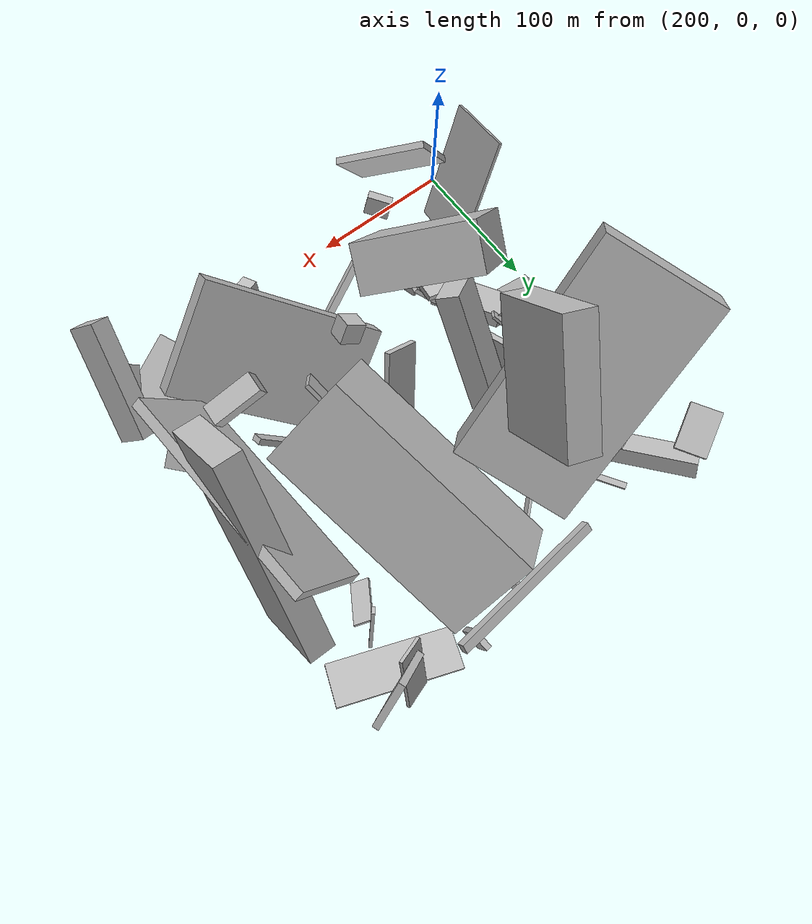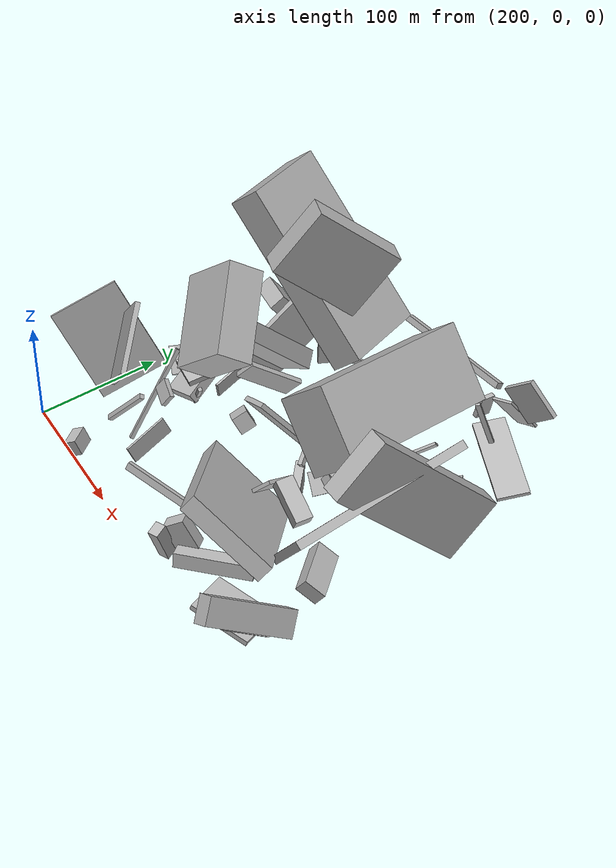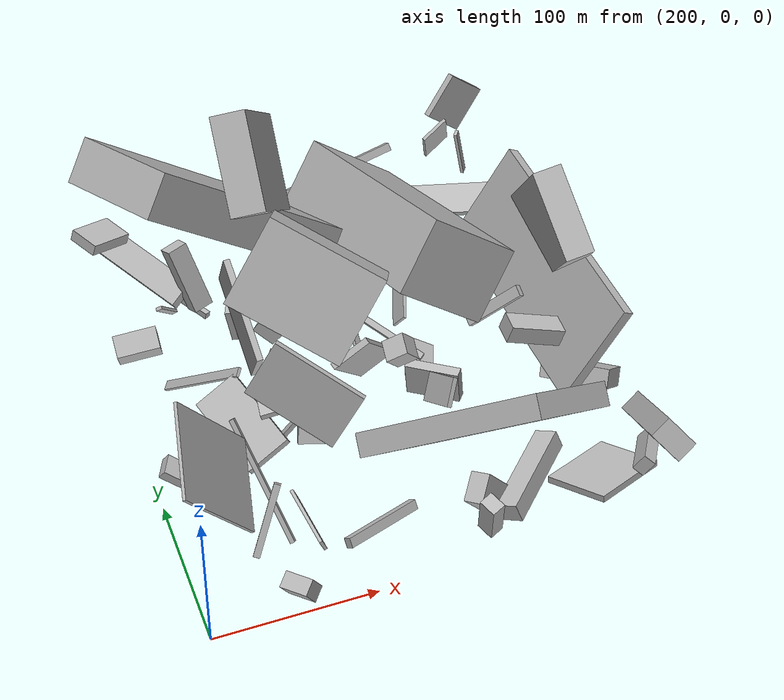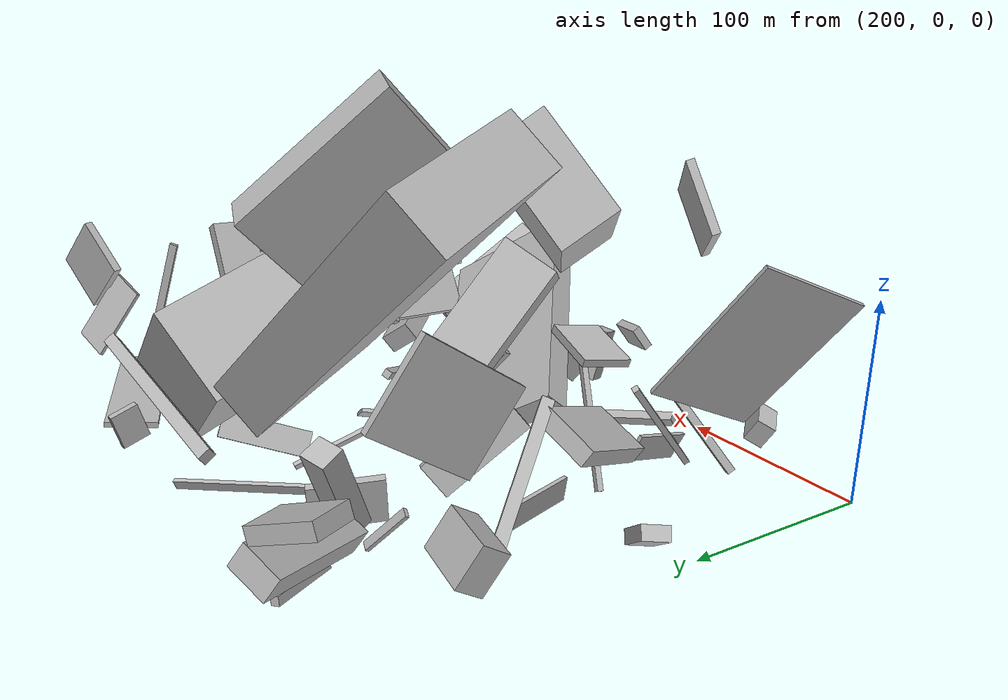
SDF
<sdf version="1.6">
 <world name="default">
  <model name="building_3">
   <static>0</static>
   <pose>450.8930975170687 287.48173431054585 97.3096310186768 1.507844690463147 -0.8073381484602125 0.4057914663743679</pose>
   <link name="link">
    <gravity>0</gravity>
    <pose>0 0 2.0 0 0 0</pose>
    <collision name="collision"><geometry><box><size>30 33 4</size></box></geometry></collision>
    <visual name="visual">
     <cast_shadows>0</cast_shadows>
     <geometry><box><size>30 33 4</size></box></geometry>
     <material>
      <script>
       <uri>model://HANNAS_wall/materials/scripts</uri>
       <uri>model://HANNAS_wall/materials/textures</uri>
       <name>vrc/HANNAS_wall</name>
      </script>
     </material>
    </visual>
   </link>
  </model>
  <model name="building_4">
   <static>0</static>
   <pose>367.2085070339192 194.0304723521374 62.208197208277205 0.36969522379419045 -0.6738252039779774 3.1195512328538704</pose>
   <link name="link">
    <gravity>0</gravity>
    <pose>0 0 24.0 0 0 0</pose>
    <collision name="collision"><geometry><box><size>64 147 48</size></box></geometry></collision>
    <visual name="visual">
     <cast_shadows>0</cast_shadows>
     <geometry><box><size>64 147 48</size></box></geometry>
     <material>
      <script>
       <uri>model://HANNAS_wall/materials/scripts</uri>
       <uri>model://HANNAS_wall/materials/textures</uri>
       <name>vrc/HANNAS_wall</name>
      </script>
     </material>
    </visual>
   </link>
  </model>
  <model name="building_8">
   <static>0</static>
   <pose>358.8000319206011 53.29572700275003 62.51961602610329 2.33568567704145 -0.6957634132902295 1.4990765797685028</pose>
   <link name="link">
    <gravity>0</gravity>
    <pose>0 0 39.0 0 0 0</pose>
    <collision name="collision"><geometry><box><size>15 128 78</size></box></geometry></collision>
    <visual name="visual">
     <cast_shadows>0</cast_shadows>
     <geometry><box><size>15 128 78</size></box></geometry>
     <material>
      <script>
       <uri>model://HANNAS_wall/materials/scripts</uri>
       <uri>model://HANNAS_wall/materials/textures</uri>
       <name>vrc/HANNAS_wall</name>
      </script>
     </material>
    </visual>
   </link>
  </model>
  <model name="building_28">
   <static>0</static>
   <pose>328.0388374397415 139.2967949768567 34.741643637846025 -0.6937214261656218 -0.8466862311553371 -2.2370734669124728</pose>
   <link name="link">
    <gravity>0</gravity>
    <pose>0 0 13.0 0 0 0</pose>
    <collision name="collision"><geometry><box><size>72 4 26</size></box></geometry></collision>
    <visual name="visual">
     <cast_shadows>0</cast_shadows>
     <geometry><box><size>72 4 26</size></box></geometry>
     <material>
      <script>
       <uri>model://HANNAS_wall/materials/scripts</uri>
       <uri>model://HANNAS_wall/materials/textures</uri>
       <name>vrc/HANNAS_wall</name>
      </script>
     </material>
    </visual>
   </link>
  </model>
  <model name="building_38">
   <static>0</static>
   <pose>464.1576836696233 96.77750329843218 36.46694940271851 -2.514524869911133 0.19679357910353318 2.3549243766485066</pose>
   <link name="link">
    <gravity>0</gravity>
    <pose>0 0 6.0 0 0 0</pose>
    <collision name="collision"><geometry><box><size>44 19 12</size></box></geometry></collision>
    <visual name="visual">
     <cast_shadows>0</cast_shadows>
     <geometry><box><size>44 19 12</size></box></geometry>
     <material>
      <script>
       <uri>model://HANNAS_wall/materials/scripts</uri>
       <uri>model://HANNAS_wall/materials/textures</uri>
       <name>vrc/HANNAS_wall</name>
      </script>
     </material>
    </visual>
   </link>
  </model>
  <model name="building_39">
   <static>0</static>
   <pose>261.3214544324071 209.63113531645956 111.17041259311725 0.32634068536976996 -0.7096972280868387 -2.9269833830023058</pose>
   <link name="link">
    <gravity>0</gravity>
    <pose>0 0 14.0 0 0 0</pose>
    <collision name="collision"><geometry><box><size>150 76 28</size></box></geometry></collision>
    <visual name="visual">
     <cast_shadows>0</cast_shadows>
     <geometry><box><size>150 76 28</size></box></geometry>
     <material>
      <script>
       <uri>model://HANNAS_wall/materials/scripts</uri>
       <uri>model://HANNAS_wall/materials/textures</uri>
       <name>vrc/HANNAS_wall</name>
      </script>
     </material>
    </visual>
   </link>
  </model>
  <model name="building_40">
   <static>0</static>
   <pose>276.9879266689189 100.03314976470202 71.57198929916207 -0.14353702798734272 0.2353346117044769 2.974491918062972</pose>
   <link name="link">
    <gravity>0</gravity>
    <pose>0 0 2.0 0 0 0</pose>
    <collision name="collision"><geometry><box><size>31 25 4</size></box></geometry></collision>
    <visual name="visual">
     <cast_shadows>0</cast_shadows>
     <geometry><box><size>31 25 4</size></box></geometry>
     <material>
      <script>
       <uri>model://HANNAS_wall/materials/scripts</uri>
       <uri>model://HANNAS_wall/materials/textures</uri>
       <name>vrc/HANNAS_wall</name>
      </script>
     </material>
    </visual>
   </link>
  </model>
  <model name="building_47">
   <static>0</static>
   <pose>408.88793407285306 36.912778225462894 12.166605865511102 0.40511841900523166 0.03553645866096697 -2.351190383416803</pose>
   <link name="link">
    <gravity>0</gravity>
    <pose>0 0 6.0 0 0 0</pose>
    <collision name="collision"><geometry><box><size>62 14 12</size></box></geometry></collision>
    <visual name="visual">
     <cast_shadows>0</cast_shadows>
     <geometry><box><size>62 14 12</size></box></geometry>
     <material>
      <script>
       <uri>model://HANNAS_wall/materials/scripts</uri>
       <uri>model://HANNAS_wall/materials/textures</uri>
       <name>vrc/HANNAS_wall</name>
      </script>
     </material>
    </visual>
   </link>
  </model>
  <model name="building_49">
   <static>0</static>
   <pose>475.37248958033126 172.39972605572916 77.97186868393027 1.8031140768209986 -0.8954587846537511 -1.7441668914271056</pose>
   <link name="link">
    <gravity>0</gravity>
    <pose>0 0 9.0 0 0 0</pose>
    <collision name="collision"><geometry><box><size>150 55 18</size></box></geometry></collision>
    <visual name="visual">
     <cast_shadows>0</cast_shadows>
     <geometry><box><size>150 55 18</size></box></geometry>
     <material>
      <script>
       <uri>model://HANNAS_wall/materials/scripts</uri>
       <uri>model://HANNAS_wall/materials/textures</uri>
       <name>vrc/HANNAS_wall</name>
      </script>
     </material>
    </visual>
   </link>
  </model>
  <model name="building_53">
   <static>0</static>
   <pose>258.8851005368619 255.14816545746297 5.8913647735968375 -0.0833760310381549 -0.1833674534385705 -2.574256198408164</pose>
   <link name="link">
    <gravity>0</gravity>
    <pose>0 0 2.0 0 0 0</pose>
    <collision name="collision"><geometry><box><size>4 35 4</size></box></geometry></collision>
    <visual name="visual">
     <cast_shadows>0</cast_shadows>
     <geometry><box><size>4 35 4</size></box></geometry>
     <material>
      <script>
       <uri>model://HANNAS_wall/materials/scripts</uri>
       <uri>model://HANNAS_wall/materials/textures</uri>
       <name>vrc/HANNAS_wall</name>
      </script>
     </material>
    </visual>
   </link>
  </model>
  <model name="building_54">
   <static>0</static>
   <pose>301.1909848867696 276.90171834122816 49.67268386523696 1.2774698055277653 -0.8966509977664123 1.9105918987117505</pose>
   <link name="link">
    <gravity>0</gravity>
    <pose>0 0 55.0 0 0 0</pose>
    <collision name="collision"><geometry><box><size>5 6 110</size></box></geometry></collision>
    <visual name="visual">
     <cast_shadows>0</cast_shadows>
     <geometry><box><size>5 6 110</size></box></geometry>
     <material>
      <script>
       <uri>model://HANNAS_wall/materials/scripts</uri>
       <uri>model://HANNAS_wall/materials/textures</uri>
       <name>vrc/HANNAS_wall</name>
      </script>
     </material>
    </visual>
   </link>
  </model>
  <model name="building_56">
   <static>0</static>
   <pose>436.6278102044429 143.02133008682407 44.38992195954907 0.05047440645811316 0.5225560769447397 0.10101155572866681</pose>
   <link name="link">
    <gravity>0</gravity>
    <pose>0 0 34.5 0 0 0</pose>
    <collision name="collision"><geometry><box><size>7 150 69</size></box></geometry></collision>
    <visual name="visual">
     <cast_shadows>0</cast_shadows>
     <geometry><box><size>7 150 69</size></box></geometry>
     <material>
      <script>
       <uri>model://HANNAS_wall/materials/scripts</uri>
       <uri>model://HANNAS_wall/materials/textures</uri>
       <name>vrc/HANNAS_wall</name>
      </script>
     </material>
    </visual>
   </link>
  </model>
  <model name="building_64">
   <static>0</static>
   <pose>291.31574658539336 25.065726243638725 121.19814643016917 1.1330629368008416 -0.34368389259049364 -2.1493027934552233</pose>
   <link name="link">
    <gravity>0</gravity>
    <pose>0 0 28.0 0 0 0</pose>
    <collision name="collision"><geometry><box><size>4 36 56</size></box></geometry></collision>
    <visual name="visual">
     <cast_shadows>0</cast_shadows>
     <geometry><box><size>4 36 56</size></box></geometry>
     <material>
      <script>
       <uri>model://HANNAS_wall/materials/scripts</uri>
       <uri>model://HANNAS_wall/materials/textures</uri>
       <name>vrc/HANNAS_wall</name>
      </script>
     </material>
    </visual>
   </link>
  </model>
  <model name="building_67">
   <static>0</static>
   <pose>393.72226839137124 284.9689047127434 21.543334299539172 -0.014562043839147169 0.2954220545655867 1.6961315396017593</pose>
   <link name="link">
    <gravity>0</gravity>
    <pose>0 0 9.0 0 0 0</pose>
    <collision name="collision"><geometry><box><size>14 4 18</size></box></geometry></collision>
    <visual name="visual">
     <cast_shadows>0</cast_shadows>
     <geometry><box><size>14 4 18</size></box></geometry>
     <material>
      <script>
       <uri>model://HANNAS_wall/materials/scripts</uri>
       <uri>model://HANNAS_wall/materials/textures</uri>
       <name>vrc/HANNAS_wall</name>
      </script>
     </material>
    </visual>
   </link>
  </model>
  <model name="building_68">
   <static>0</static>
   <pose>459.5550186898059 10.872238687148558 22.125016118834434 -2.658548285582167 -1.2071760480615166 1.5649358834857627</pose>
   <link name="link">
    <gravity>0</gravity>
    <pose>0 0 21.0 0 0 0</pose>
    <collision name="collision"><geometry><box><size>4 50 42</size></box></geometry></collision>
    <visual name="visual">
     <cast_shadows>0</cast_shadows>
     <geometry><box><size>4 50 42</size></box></geometry>
     <material>
      <script>
       <uri>model://HANNAS_wall/materials/scripts</uri>
       <uri>model://HANNAS_wall/materials/textures</uri>
       <name>vrc/HANNAS_wall</name>
      </script>
     </material>
    </visual>
   </link>
  </model>
  <model name="building_70">
   <static>0</static>
   <pose>288.0774944363029 239.85632933779627 22.23082853786638 1.5066098114086959 -0.18015459790749647 -0.36082647811385526</pose>
   <link name="link">
    <gravity>0</gravity>
    <pose>0 0 17.0 0 0 0</pose>
    <collision name="collision"><geometry><box><size>4 22 34</size></box></geometry></collision>
    <visual name="visual">
     <cast_shadows>0</cast_shadows>
     <geometry><box><size>4 22 34</size></box></geometry>
     <material>
      <script>
       <uri>model://HANNAS_wall/materials/scripts</uri>
       <uri>model://HANNAS_wall/materials/textures</uri>
       <name>vrc/HANNAS_wall</name>
      </script>
     </material>
    </visual>
   </link>
  </model>
  <model name="building_73">
   <static>0</static>
   <pose>484.0562595329216 39.369407734342815 23.395838117945562 1.0856962658154055 -0.9311411904721506 -0.14004896890859905</pose>
   <link name="link">
    <gravity>0</gravity>
    <pose>0 0 17.5 0 0 0</pose>
    <collision name="collision"><geometry><box><size>11 8 35</size></box></geometry></collision>
    <visual name="visual">
     <cast_shadows>0</cast_shadows>
     <geometry><box><size>11 8 35</size></box></geometry>
     <material>
      <script>
       <uri>model://HANNAS_wall/materials/scripts</uri>
       <uri>model://HANNAS_wall/materials/textures</uri>
       <name>vrc/HANNAS_wall</name>
      </script>
     </material>
    </visual>
   </link>
  </model>
  <model name="building_74">
   <static>0</static>
   <pose>275.9781082489166 193.02633966864144 39.17748305069685 0.5881225058562685 -0.07759325036453091 0.004578620516862729</pose>
   <link name="link">
    <gravity>0</gravity>
    <pose>0 0 24.5 0 0 0</pose>
    <collision name="collision"><geometry><box><size>4 64 49</size></box></geometry></collision>
    <visual name="visual">
     <cast_shadows>0</cast_shadows>
     <geometry><box><size>4 64 49</size></box></geometry>
     <material>
      <script>
       <uri>model://HANNAS_wall/materials/scripts</uri>
       <uri>model://HANNAS_wall/materials/textures</uri>
       <name>vrc/HANNAS_wall</name>
      </script>
     </material>
    </visual>
   </link>
  </model>
  <model name="building_79">
   <static>0</static>
   <pose>283.8148423378803 68.55182333729498 69.92878491159374 0.18339374641852282 -0.9544849470770315 1.1864484780937679</pose>
   <link name="link">
    <gravity>0</gravity>
    <pose>0 0 2.0 0 0 0</pose>
    <collision name="collision"><geometry><box><size>12 17 4</size></box></geometry></collision>
    <visual name="visual">
     <cast_shadows>0</cast_shadows>
     <geometry><box><size>12 17 4</size></box></geometry>
     <material>
      <script>
       <uri>model://HANNAS_wall/materials/scripts</uri>
       <uri>model://HANNAS_wall/materials/textures</uri>
       <name>vrc/HANNAS_wall</name>
      </script>
     </material>
    </visual>
   </link>
  </model>
  <model name="building_80">
   <static>0</static>
   <pose>223.79151889229533 281.3874028437046 58.41293277795711 1.2385245863114624 0.07652452511252121 -1.0610082676688133</pose>
   <link name="link">
    <gravity>0</gravity>
    <pose>0 0 15.0 0 0 0</pose>
    <collision name="collision"><geometry><box><size>20 7 30</size></box></geometry></collision>
    <visual name="visual">
     <cast_shadows>0</cast_shadows>
     <geometry><box><size>20 7 30</size></box></geometry>
     <material>
      <script>
       <uri>model://HANNAS_wall/materials/scripts</uri>
       <uri>model://HANNAS_wall/materials/textures</uri>
       <name>vrc/HANNAS_wall</name>
      </script>
     </material>
    </visual>
   </link>
  </model>
  <model name="building_84">
   <static>0</static>
   <pose>300.6324857603844 121.65148395161677 133.37333653230834 0.5850818148740765 -0.8231632846714059 0.45023342880751843</pose>
   <link name="link">
    <gravity>0</gravity>
    <pose>0 0 15.0 0 0 0</pose>
    <collision name="collision"><geometry><box><size>55 73 30</size></box></geometry></collision>
    <visual name="visual">
     <cast_shadows>0</cast_shadows>
     <geometry><box><size>55 73 30</size></box></geometry>
     <material>
      <script>
       <uri>model://HANNAS_wall/materials/scripts</uri>
       <uri>model://HANNAS_wall/materials/textures</uri>
       <name>vrc/HANNAS_wall</name>
      </script>
     </material>
    </visual>
   </link>
  </model>
  <model name="building_91">
   <static>0</static>
   <pose>283.1106934711132 158.74969659400188 32.70215819552576 1.8026377217466651 -0.8660245849622924 0.939646807227113</pose>
   <link name="link">
    <gravity>0</gravity>
    <pose>0 0 2.0 0 0 0</pose>
    <collision name="collision"><geometry><box><size>19 50 4</size></box></geometry></collision>
    <visual name="visual">
     <cast_shadows>0</cast_shadows>
     <geometry><box><size>19 50 4</size></box></geometry>
     <material>
      <script>
       <uri>model://HANNAS_wall/materials/scripts</uri>
       <uri>model://HANNAS_wall/materials/textures</uri>
       <name>vrc/HANNAS_wall</name>
      </script>
     </material>
    </visual>
   </link>
  </model>
  <model name="building_93">
   <static>0</static>
   <pose>459.22396954145813 187.0985094034872 57.41319609349473 -0.15174600289991633 0.010385405322907418 -2.0616462230685024</pose>
   <link name="link">
    <gravity>0</gravity>
    <pose>0 0 10.0 0 0 0</pose>
    <collision name="collision"><geometry><box><size>18 5 20</size></box></geometry></collision>
    <visual name="visual">
     <cast_shadows>0</cast_shadows>
     <geometry><box><size>18 5 20</size></box></geometry>
     <material>
      <script>
       <uri>model://HANNAS_wall/materials/scripts</uri>
       <uri>model://HANNAS_wall/materials/textures</uri>
       <name>vrc/HANNAS_wall</name>
      </script>
     </material>
    </visual>
   </link>
  </model>
  <model name="building_97">
   <static>0</static>
   <pose>249.76196855340194 51.014916220795115 26.30629766962182 0.3786679645907745 -0.9056060284706312 0.7657431930653747</pose>
   <link name="link">
    <gravity>0</gravity>
    <pose>0 0 2.0 0 0 0</pose>
    <collision name="collision"><geometry><box><size>45 4 4</size></box></geometry></collision>
    <visual name="visual">
     <cast_shadows>0</cast_shadows>
     <geometry><box><size>45 4 4</size></box></geometry>
     <material>
      <script>
       <uri>model://HANNAS_wall/materials/scripts</uri>
       <uri>model://HANNAS_wall/materials/textures</uri>
       <name>vrc/HANNAS_wall</name>
      </script>
     </material>
    </visual>
   </link>
  </model>
  <model name="building_99">
   <static>0</static>
   <pose>242.41295129684426 111.65140966074142 33.47399488737736 1.093014008957434 -0.3281525409322316 1.9410191777331234</pose>
   <link name="link">
    <gravity>0</gravity>
    <pose>0 0 14.5 0 0 0</pose>
    <collision name="collision"><geometry><box><size>52 9 29</size></box></geometry></collision>
    <visual name="visual">
     <cast_shadows>0</cast_shadows>
     <geometry><box><size>52 9 29</size></box></geometry>
     <material>
      <script>
       <uri>model://HANNAS_wall/materials/scripts</uri>
       <uri>model://HANNAS_wall/materials/textures</uri>
       <name>vrc/HANNAS_wall</name>
      </script>
     </material>
    </visual>
   </link>
  </model>
  <model name="building_104">
   <static>0</static>
   <pose>222.92474773822056 52.15481723533658 80.19268624215246 2.404754666407856 -0.9674273935689842 -2.708637456373937</pose>
   <link name="link">
    <gravity>0</gravity>
    <pose>0 0 1.0 0 0 0</pose>
    <collision name="collision"><geometry><box><size>80 56 2</size></box></geometry></collision>
    <visual name="visual">
     <cast_shadows>0</cast_shadows>
     <geometry><box><size>80 56 2</size></box></geometry>
     <material>
      <script>
       <uri>model://HANNAS_wall/materials/scripts</uri>
       <uri>model://HANNAS_wall/materials/textures</uri>
       <name>vrc/HANNAS_wall</name>
      </script>
     </material>
    </visual>
   </link>
  </model>
  <model name="building_106">
   <static>0</static>
   <pose>258.44337727753305 234.97865091428815 47.682339461473205 2.0106517495027028 0.11732422232820003 -2.824768102963615</pose>
   <link name="link">
    <gravity>0</gravity>
    <pose>0 0 5.5 0 0 0</pose>
    <collision name="collision"><geometry><box><size>13 44 11</size></box></geometry></collision>
    <visual name="visual">
     <cast_shadows>0</cast_shadows>
     <geometry><box><size>13 44 11</size></box></geometry>
     <material>
      <script>
       <uri>model://HANNAS_wall/materials/scripts</uri>
       <uri>model://HANNAS_wall/materials/textures</uri>
       <name>vrc/HANNAS_wall</name>
      </script>
     </material>
    </visual>
   </link>
  </model>
  <model name="building_113">
   <static>0</static>
   <pose>254.69496284259108 73.63813920518163 33.63464485884361 0.9111432128707472 -0.47335736250879307 -0.21112918332748257</pose>
   <link name="link">
    <gravity>0</gravity>
    <pose>0 0 1.5 0 0 0</pose>
    <collision name="collision"><geometry><box><size>3 80 3</size></box></geometry></collision>
    <visual name="visual">
     <cast_shadows>0</cast_shadows>
     <geometry><box><size>3 80 3</size></box></geometry>
     <material>
      <script>
       <uri>model://HANNAS_wall/materials/scripts</uri>
       <uri>model://HANNAS_wall/materials/textures</uri>
       <name>vrc/HANNAS_wall</name>
      </script>
     </material>
    </visual>
   </link>
  </model>
  <model name="building_114">
   <static>0</static>
   <pose>375.1533871322948 106.35259376933845 34.521622264931494 2.2726432447225955 -0.7658150954428806 0.9358996347001246</pose>
   <link name="link">
    <gravity>0</gravity>
    <pose>0 0 1.5 0 0 0</pose>
    <collision name="collision"><geometry><box><size>18 29 3</size></box></geometry></collision>
    <visual name="visual">
     <cast_shadows>0</cast_shadows>
     <geometry><box><size>18 29 3</size></box></geometry>
     <material>
      <script>
       <uri>model://HANNAS_wall/materials/scripts</uri>
       <uri>model://HANNAS_wall/materials/textures</uri>
       <name>vrc/HANNAS_wall</name>
      </script>
     </material>
    </visual>
   </link>
  </model>
  <model name="building_116">
   <static>0</static>
   <pose>447.8626951499162 255.41397846405062 64.93696113266303 0.03819898910772765 0.303998765635343 -2.2545773378375658</pose>
   <link name="link">
    <gravity>0</gravity>
    <pose>0 0 21.5 0 0 0</pose>
    <collision name="collision"><geometry><box><size>4 2 43</size></box></geometry></collision>
    <visual name="visual">
     <cast_shadows>0</cast_shadows>
     <geometry><box><size>4 2 43</size></box></geometry>
     <material>
      <script>
       <uri>model://HANNAS_wall/materials/scripts</uri>
       <uri>model://HANNAS_wall/materials/textures</uri>
       <name>vrc/HANNAS_wall</name>
      </script>
     </material>
    </visual>
   </link>
  </model>
  <model name="building_121">
   <static>0</static>
   <pose>254.32736157186565 143.0871632550501 13.364068835165138 1.442851774148836 -0.014307371605179553 1.8710418041662968</pose>
   <link name="link">
    <gravity>0</gravity>
    <pose>0 0 1.0 0 0 0</pose>
    <collision name="collision"><geometry><box><size>40 12 2</size></box></geometry></collision>
    <visual name="visual">
     <cast_shadows>0</cast_shadows>
     <geometry><box><size>40 12 2</size></box></geometry>
     <material>
      <script>
       <uri>model://HANNAS_wall/materials/scripts</uri>
       <uri>model://HANNAS_wall/materials/textures</uri>
       <name>vrc/HANNAS_wall</name>
      </script>
     </material>
    </visual>
   </link>
  </model>
  <model name="building_123">
   <static>0</static>
   <pose>393.8543481092057 216.24367878942024 15.992648230786154 -2.6468965656313483 -0.34985336991433685 1.235733117407971</pose>
   <link name="link">
    <gravity>0</gravity>
    <pose>0 0 7.0 0 0 0</pose>
    <collision name="collision"><geometry><box><size>48 2 14</size></box></geometry></collision>
    <visual name="visual">
     <cast_shadows>0</cast_shadows>
     <geometry><box><size>48 2 14</size></box></geometry>
     <material>
      <script>
       <uri>model://HANNAS_wall/materials/scripts</uri>
       <uri>model://HANNAS_wall/materials/textures</uri>
       <name>vrc/HANNAS_wall</name>
      </script>
     </material>
    </visual>
   </link>
  </model>
  <model name="building_128">
   <static>0</static>
   <pose>368.5020633860855 11.086216175093996 22.76225528015072 1.3967014901230328 -0.17674583250336012 2.002417287654818</pose>
   <link name="link">
    <gravity>0</gravity>
    <pose>0 0 4.5 0 0 0</pose>
    <collision name="collision"><geometry><box><size>11 31 9</size></box></geometry></collision>
    <visual name="visual">
     <cast_shadows>0</cast_shadows>
     <geometry><box><size>11 31 9</size></box></geometry>
     <material>
      <script>
       <uri>model://HANNAS_wall/materials/scripts</uri>
       <uri>model://HANNAS_wall/materials/textures</uri>
       <name>vrc/HANNAS_wall</name>
      </script>
     </material>
    </visual>
   </link>
  </model>
  <model name="building_134">
   <static>0</static>
   <pose>274.72654516277464 100.95914290293045 36.95736421296928 1.6957623461996514 0.5424642698659097 -0.12725678341699673</pose>
   <link name="link">
    <gravity>0</gravity>
    <pose>0 0 1.5 0 0 0</pose>
    <collision name="collision"><geometry><box><size>3 68 3</size></box></geometry></collision>
    <visual name="visual">
     <cast_shadows>0</cast_shadows>
     <geometry><box><size>3 68 3</size></box></geometry>
     <material>
      <script>
       <uri>model://HANNAS_wall/materials/scripts</uri>
       <uri>model://HANNAS_wall/materials/textures</uri>
       <name>vrc/HANNAS_wall</name>
      </script>
     </material>
    </visual>
   </link>
  </model>
  <model name="building_139">
   <static>0</static>
   <pose>322.54251089670447 251.8998337522667 18.793200813684646 -1.1625916832976244 -0.11721334840066969 -2.410294685174244</pose>
   <link name="link">
    <gravity>0</gravity>
    <pose>0 0 1.0 0 0 0</pose>
    <collision name="collision"><geometry><box><size>80 5 2</size></box></geometry></collision>
    <visual name="visual">
     <cast_shadows>0</cast_shadows>
     <geometry><box><size>80 5 2</size></box></geometry>
     <material>
      <script>
       <uri>model://HANNAS_wall/materials/scripts</uri>
       <uri>model://HANNAS_wall/materials/textures</uri>
       <name>vrc/HANNAS_wall</name>
      </script>
     </material>
    </visual>
   </link>
  </model>
  <model name="building_142">
   <static>0</static>
   <pose>343.201799414339 96.71121822638509 90.99648762433301 -2.6911104106672314 -0.5614014481779517 -0.34522769974469913</pose>
   <link name="link">
    <gravity>0</gravity>
    <pose>0 0 7.0 0 0 0</pose>
    <collision name="collision"><geometry><box><size>14 13 14</size></box></geometry></collision>
    <visual name="visual">
     <cast_shadows>0</cast_shadows>
     <geometry><box><size>14 13 14</size></box></geometry>
     <material>
      <script>
       <uri>model://HANNAS_wall/materials/scripts</uri>
       <uri>model://HANNAS_wall/materials/textures</uri>
       <name>vrc/HANNAS_wall</name>
      </script>
     </material>
    </visual>
   </link>
  </model>
  <model name="building_144">
   <static>0</static>
   <pose>257.40174639840177 4.7450439517297855 14.358754822644633 -0.20284213756396538 -0.48465773535868445 0.7930444221563333</pose>
   <link name="link">
    <gravity>0</gravity>
    <pose>0 0 6.5 0 0 0</pose>
    <collision name="collision"><geometry><box><size>10 18 13</size></box></geometry></collision>
    <visual name="visual">
     <cast_shadows>0</cast_shadows>
     <geometry><box><size>10 18 13</size></box></geometry>
     <material>
      <script>
       <uri>model://HANNAS_wall/materials/scripts</uri>
       <uri>model://HANNAS_wall/materials/textures</uri>
       <name>vrc/HANNAS_wall</name>
      </script>
     </material>
    </visual>
   </link>
  </model>
  <model name="building_147">
   <static>0</static>
   <pose>316.2651310557496 37.82737225059792 10.513422763183705 2.1879737570632356 -0.2026262041582077 -2.6938284457990753</pose>
   <link name="link">
    <gravity>0</gravity>
    <pose>0 0 2.5 0 0 0</pose>
    <collision name="collision"><geometry><box><size>55 6 5</size></box></geometry></collision>
    <visual name="visual">
     <cast_shadows>0</cast_shadows>
     <geometry><box><size>55 6 5</size></box></geometry>
     <material>
      <script>
       <uri>model://HANNAS_wall/materials/scripts</uri>
       <uri>model://HANNAS_wall/materials/textures</uri>
       <name>vrc/HANNAS_wall</name>
      </script>
     </material>
    </visual>
   </link>
  </model>
  <model name="building_148">
   <static>0</static>
   <pose>228.3423126796323 205.15761322187734 31.571040989567262 1.7849595665213351 -1.0053254161931897 -1.8527162184164216</pose>
   <link name="link">
    <gravity>0</gravity>
    <pose>0 0 13.5 0 0 0</pose>
    <collision name="collision"><geometry><box><size>20 14 27</size></box></geometry></collision>
    <visual name="visual">
     <cast_shadows>0</cast_shadows>
     <geometry><box><size>20 14 27</size></box></geometry>
     <material>
      <script>
       <uri>model://HANNAS_wall/materials/scripts</uri>
       <uri>model://HANNAS_wall/materials/textures</uri>
       <name>vrc/HANNAS_wall</name>
      </script>
     </material>
    </visual>
   </link>
  </model>
  <model name="building_152">
   <static>0</static>
   <pose>438.89697740812585 281.4589865626473 73.13943193875565 1.1466771887152443 0.43090916441923915 -2.82620732638215</pose>
   <link name="link">
    <gravity>0</gravity>
    <pose>0 0 1.0 0 0 0</pose>
    <collision name="collision"><geometry><box><size>19 38 2</size></box></geometry></collision>
    <visual name="visual">
     <cast_shadows>0</cast_shadows>
     <geometry><box><size>19 38 2</size></box></geometry>
     <material>
      <script>
       <uri>model://HANNAS_wall/materials/scripts</uri>
       <uri>model://HANNAS_wall/materials/textures</uri>
       <name>vrc/HANNAS_wall</name>
      </script>
     </material>
    </visual>
   </link>
  </model>
  <model name="building_154">
   <static>0</static>
   <pose>237.08423879645113 266.1657577689625 33.595874826121644 0.539924188098157 0.23978420742288933 -0.9493672829412615</pose>
   <link name="link">
    <gravity>0</gravity>
    <pose>0 0 5.5 0 0 0</pose>
    <collision name="collision"><geometry><box><size>63 18 11</size></box></geometry></collision>
    <visual name="visual">
     <cast_shadows>0</cast_shadows>
     <geometry><box><size>63 18 11</size></box></geometry>
     <material>
      <script>
       <uri>model://HANNAS_wall/materials/scripts</uri>
       <uri>model://HANNAS_wall/materials/textures</uri>
       <name>vrc/HANNAS_wall</name>
      </script>
     </material>
    </visual>
   </link>
  </model>
  <model name="building_155">
   <static>0</static>
   <pose>216.73620001452392 113.94620756289174 12.11626883384263 2.5305103090980636 0.09234790855110908 -2.0293714412731405</pose>
   <link name="link">
    <gravity>0</gravity>
    <pose>0 0 3.5 0 0 0</pose>
    <collision name="collision"><geometry><box><size>13 23 7</size></box></geometry></collision>
    <visual name="visual">
     <cast_shadows>0</cast_shadows>
     <geometry><box><size>13 23 7</size></box></geometry>
     <material>
      <script>
       <uri>model://HANNAS_wall/materials/scripts</uri>
       <uri>model://HANNAS_wall/materials/textures</uri>
       <name>vrc/HANNAS_wall</name>
      </script>
     </material>
    </visual>
   </link>
  </model>
  <model name="building_157">
   <static>0</static>
   <pose>241.9695950925947 159.396945874435 33.32584847575962 -1.0385514160029654 -0.7017177216946648 -0.9961117921108518</pose>
   <link name="link">
    <gravity>0</gravity>
    <pose>0 0 3.0 0 0 0</pose>
    <collision name="collision"><geometry><box><size>80 2 6</size></box></geometry></collision>
    <visual name="visual">
     <cast_shadows>0</cast_shadows>
     <geometry><box><size>80 2 6</size></box></geometry>
     <material>
      <script>
       <uri>model://HANNAS_wall/materials/scripts</uri>
       <uri>model://HANNAS_wall/materials/textures</uri>
       <name>vrc/HANNAS_wall</name>
      </script>
     </material>
    </visual>
   </link>
  </model>
  <model name="building_158">
   <static>0</static>
   <pose>420.44847154035006 130.07239357329163 68.0295744851912 0.7067250794050084 -0.7729262651367792 -0.4433405877429529</pose>
   <link name="link">
    <gravity>0</gravity>
    <pose>0 0 2.0 0 0 0</pose>
    <collision name="collision"><geometry><box><size>41 7 4</size></box></geometry></collision>
    <visual name="visual">
     <cast_shadows>0</cast_shadows>
     <geometry><box><size>41 7 4</size></box></geometry>
     <material>
      <script>
       <uri>model://HANNAS_wall/materials/scripts</uri>
       <uri>model://HANNAS_wall/materials/textures</uri>
       <name>vrc/HANNAS_wall</name>
      </script>
     </material>
    </visual>
   </link>
  </model>
  <model name="building_162">
   <static>0</static>
   <pose>473.6174534083526 29.677164434110022 56.72029778924548 2.365912443403559 -0.5750390562829898 0.26583453716337857</pose>
   <link name="link">
    <gravity>0</gravity>
    <pose>0 0 11.0 0 0 0</pose>
    <collision name="collision"><geometry><box><size>14 80 22</size></box></geometry></collision>
    <visual name="visual">
     <cast_shadows>0</cast_shadows>
     <geometry><box><size>14 80 22</size></box></geometry>
     <material>
      <script>
       <uri>model://HANNAS_wall/materials/scripts</uri>
       <uri>model://HANNAS_wall/materials/textures</uri>
       <name>vrc/HANNAS_wall</name>
      </script>
     </material>
    </visual>
   </link>
  </model>
  <model name="building_164">
   <static>0</static>
   <pose>442.26832793027967 270.68856387665 26.51489230519355 -0.07873050491571933 -0.08627537018261461 1.2254255216861125</pose>
   <link name="link">
    <gravity>0</gravity>
    <pose>0 0 1.5 0 0 0</pose>
    <collision name="collision"><geometry><box><size>26 79 3</size></box></geometry></collision>
    <visual name="visual">
     <cast_shadows>0</cast_shadows>
     <geometry><box><size>26 79 3</size></box></geometry>
     <material>
      <script>
       <uri>model://HANNAS_wall/materials/scripts</uri>
       <uri>model://HANNAS_wall/materials/textures</uri>
       <name>vrc/HANNAS_wall</name>
      </script>
     </material>
    </visual>
   </link>
  </model>
  <model name="building_171">
   <static>0</static>
   <pose>380.2193852753757 34.94737105629165 29.422325253236146 2.143729629854665 -0.2689827909578816 -0.8160593599753274</pose>
   <link name="link">
    <gravity>0</gravity>
    <pose>0 0 9.0 0 0 0</pose>
    <collision name="collision"><geometry><box><size>12 26 18</size></box></geometry></collision>
    <visual name="visual">
     <cast_shadows>0</cast_shadows>
     <geometry><box><size>12 26 18</size></box></geometry>
     <material>
      <script>
       <uri>model://HANNAS_wall/materials/scripts</uri>
       <uri>model://HANNAS_wall/materials/textures</uri>
       <name>vrc/HANNAS_wall</name>
      </script>
     </material>
    </visual>
   </link>
  </model>
  <model name="building_176">
   <static>0</static>
   <pose>347.27085243728015 186.35504221534393 19.3670699982251 0.5157229493559772 -0.7444528902245012 2.5699709431671582</pose>
   <link name="link">
    <gravity>0</gravity>
    <pose>0 0 1.0 0 0 0</pose>
    <collision name="collision"><geometry><box><size>6 70 2</size></box></geometry></collision>
    <visual name="visual">
     <cast_shadows>0</cast_shadows>
     <geometry><box><size>6 70 2</size></box></geometry>
     <material>
      <script>
       <uri>model://HANNAS_wall/materials/scripts</uri>
       <uri>model://HANNAS_wall/materials/textures</uri>
       <name>vrc/HANNAS_wall</name>
      </script>
     </material>
    </visual>
   </link>
  </model>
  <model name="building_181">
   <static>0</static>
   <pose>366.77276235331146 136.78303077577525 19.326023189544003 1.4899634893610678 0.003047053337600691 0.8995064961279862</pose>
   <link name="link">
    <gravity>0</gravity>
    <pose>0 0 17.0 0 0 0</pose>
    <collision name="collision"><geometry><box><size>7 22 34</size></box></geometry></collision>
    <visual name="visual">
     <cast_shadows>0</cast_shadows>
     <geometry><box><size>7 22 34</size></box></geometry>
     <material>
      <script>
       <uri>model://HANNAS_wall/materials/scripts</uri>
       <uri>model://HANNAS_wall/materials/textures</uri>
       <name>vrc/HANNAS_wall</name>
      </script>
     </material>
    </visual>
   </link>
  </model>
  <model name="building_182">
   <static>0</static>
   <pose>433.84390041271615 226.6043800950555 12.06355216373304 0.4443626344818154 -0.3194365516685446 1.0287428165717887</pose>
   <link name="link">
    <gravity>0</gravity>
    <pose>0 0 1.0 0 0 0</pose>
    <collision name="collision"><geometry><box><size>29 13 2</size></box></geometry></collision>
    <visual name="visual">
     <cast_shadows>0</cast_shadows>
     <geometry><box><size>29 13 2</size></box></geometry>
     <material>
      <script>
       <uri>model://HANNAS_wall/materials/scripts</uri>
       <uri>model://HANNAS_wall/materials/textures</uri>
       <name>vrc/HANNAS_wall</name>
      </script>
     </material>
    </visual>
   </link>
  </model>
  <model name="building_183">
   <static>0</static>
   <pose>427.81226418202584 86.37208610938482 80.68252435225031 1.6283091886826366 -0.3433319019169098 3.067886098137763</pose>
   <link name="link">
    <gravity>0</gravity>
    <pose>0 0 7.0 0 0 0</pose>
    <collision name="collision"><geometry><box><size>35 11 14</size></box></geometry></collision>
    <visual name="visual">
     <cast_shadows>0</cast_shadows>
     <geometry><box><size>35 11 14</size></box></geometry>
     <material>
      <script>
       <uri>model://HANNAS_wall/materials/scripts</uri>
       <uri>model://HANNAS_wall/materials/textures</uri>
       <name>vrc/HANNAS_wall</name>
      </script>
     </material>
    </visual>
   </link>
  </model>
  <model name="building_187">
   <static>0</static>
   <pose>239.6896193597126 226.74076265219153 32.13711207668398 0.7144898000313977 -0.8131407121710775 -2.383527263617862</pose>
   <link name="link">
    <gravity>0</gravity>
    <pose>0 0 1.0 0 0 0</pose>
    <collision name="collision"><geometry><box><size>24 4 2</size></box></geometry></collision>
    <visual name="visual">
     <cast_shadows>0</cast_shadows>
     <geometry><box><size>24 4 2</size></box></geometry>
     <material>
      <script>
       <uri>model://HANNAS_wall/materials/scripts</uri>
       <uri>model://HANNAS_wall/materials/textures</uri>
       <name>vrc/HANNAS_wall</name>
      </script>
     </material>
    </visual>
   </link>
  </model>
  <model name="building_201">
   <static>0</static>
   <pose>374.6282107573842 132.5378777515283 36.910293911098556 -1.2579168224937518 -0.4557697315369799 0.556038538414629</pose>
   <link name="link">
    <gravity>0</gravity>
    <pose>0 0 28.0 0 0 0</pose>
    <collision name="collision"><geometry><box><size>4 4 56</size></box></geometry></collision>
    <visual name="visual">
     <cast_shadows>0</cast_shadows>
     <geometry><box><size>4 4 56</size></box></geometry>
     <material>
      <script>
       <uri>model://HANNAS_wall/materials/scripts</uri>
       <uri>model://HANNAS_wall/materials/textures</uri>
       <name>vrc/HANNAS_wall</name>
      </script>
     </material>
    </visual>
   </link>
  </model>
  <model name="building_213">
   <static>0</static>
   <pose>309.30038529587466 236.22264805865345 124.84545215593107 -0.3493757807468959 -0.7992266186219165 1.527742352890126</pose>
   <link name="link">
    <gravity>0</gravity>
    <pose>0 0 40.0 0 0 0</pose>
    <collision name="collision"><geometry><box><size>59 21 80</size></box></geometry></collision>
    <visual name="visual">
     <cast_shadows>0</cast_shadows>
     <geometry><box><size>59 21 80</size></box></geometry>
     <material>
      <script>
       <uri>model://HANNAS_wall/materials/scripts</uri>
       <uri>model://HANNAS_wall/materials/textures</uri>
       <name>vrc/HANNAS_wall</name>
      </script>
     </material>
    </visual>
   </link>
  </model>
  <model name="building_217">
   <static>0</static>
   <pose>273.3113147163457 52.374401285339346 18.305846322840786 -2.8019607174864634 0.24644125366118147 -1.3977020578293597</pose>
   <link name="link">
    <gravity>0</gravity>
    <pose>0 0 7.5 0 0 0</pose>
    <collision name="collision"><geometry><box><size>37 2 15</size></box></geometry></collision>
    <visual name="visual">
     <cast_shadows>0</cast_shadows>
     <geometry><box><size>37 2 15</size></box></geometry>
     <material>
      <script>
       <uri>model://HANNAS_wall/materials/scripts</uri>
       <uri>model://HANNAS_wall/materials/textures</uri>
       <name>vrc/HANNAS_wall</name>
      </script>
     </material>
    </visual>
   </link>
  </model>
  <model name="building_222">
   <static>0</static>
   <pose>380.5150848301726 153.76210348007362 10.262297287386714 0.17219940129757913 0.5228580508336941 -0.2836291248171565</pose>
   <link name="link">
    <gravity>0</gravity>
    <pose>0 0 1.0 0 0 0</pose>
    <collision name="collision"><geometry><box><size>19 29 2</size></box></geometry></collision>
    <visual name="visual">
     <cast_shadows>0</cast_shadows>
     <geometry><box><size>19 29 2</size></box></geometry>
     <material>
      <script>
       <uri>model://HANNAS_wall/materials/scripts</uri>
       <uri>model://HANNAS_wall/materials/textures</uri>
       <name>vrc/HANNAS_wall</name>
      </script>
     </material>
    </visual>
   </link>
  </model>
  <model name="building_223">
   <static>0</static>
   <pose>299.61927914178085 148.53576621384065 90.86349949033487 1.0628125420090426 -0.1109025366155044 -1.1045730287311926</pose>
   <link name="link">
    <gravity>0</gravity>
    <pose>0 0 3.0 0 0 0</pose>
    <collision name="collision"><geometry><box><size>2 3 6</size></box></geometry></collision>
    <visual name="visual">
     <cast_shadows>0</cast_shadows>
     <geometry><box><size>2 3 6</size></box></geometry>
     <material>
      <script>
       <uri>model://HANNAS_wall/materials/scripts</uri>
       <uri>model://HANNAS_wall/materials/textures</uri>
       <name>vrc/HANNAS_wall</name>
      </script>
     </material>
    </visual>
   </link>
  </model>
  <model name="building_224">
   <static>0</static>
   <pose>295.87898056174157 176.46546275892416 54.83949598688402 -0.5262654280245919 0.4812377992320387 -2.5989999397189227</pose>
   <link name="link">
    <gravity>0</gravity>
    <pose>0 0 40.0 0 0 0</pose>
    <collision name="collision"><geometry><box><size>28 15 80</size></box></geometry></collision>
    <visual name="visual">
     <cast_shadows>0</cast_shadows>
     <geometry><box><size>28 15 80</size></box></geometry>
     <material>
      <script>
       <uri>model://HANNAS_wall/materials/scripts</uri>
       <uri>model://HANNAS_wall/materials/textures</uri>
       <name>vrc/HANNAS_wall</name>
      </script>
     </material>
    </visual>
   </link>
  </model>
 </world>
</sdf>
